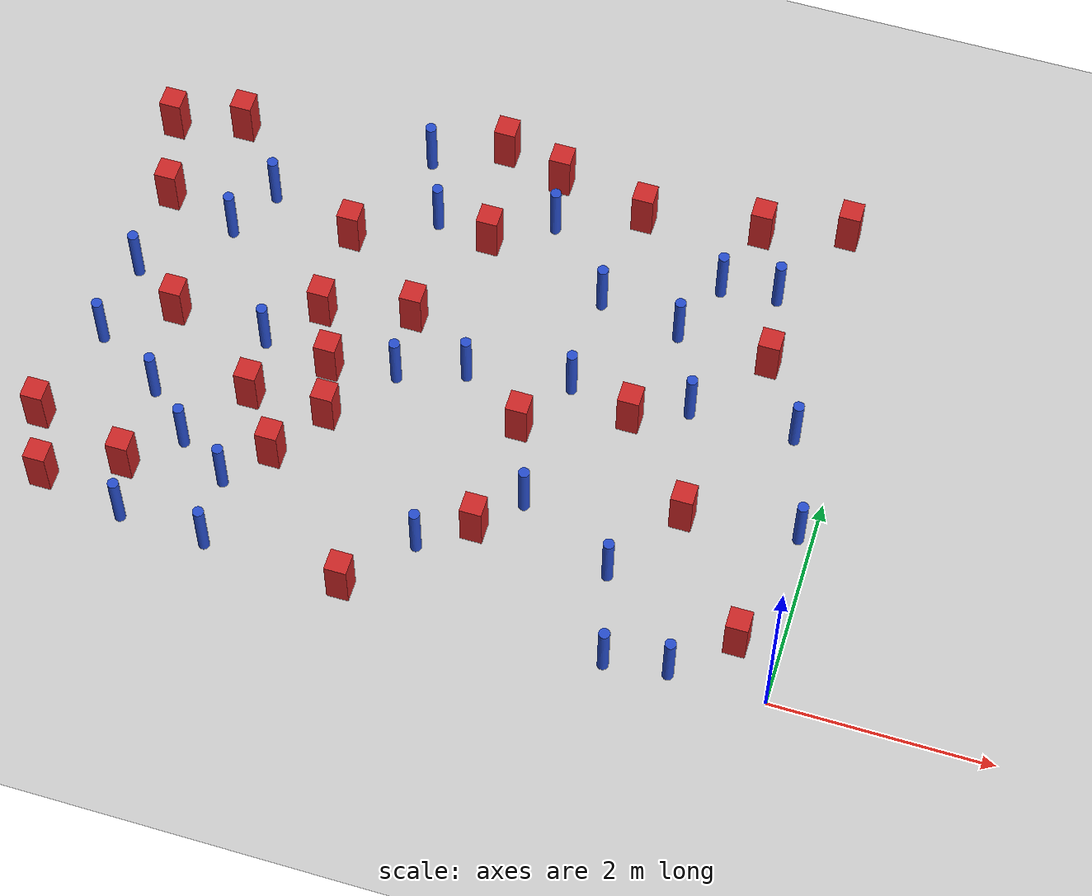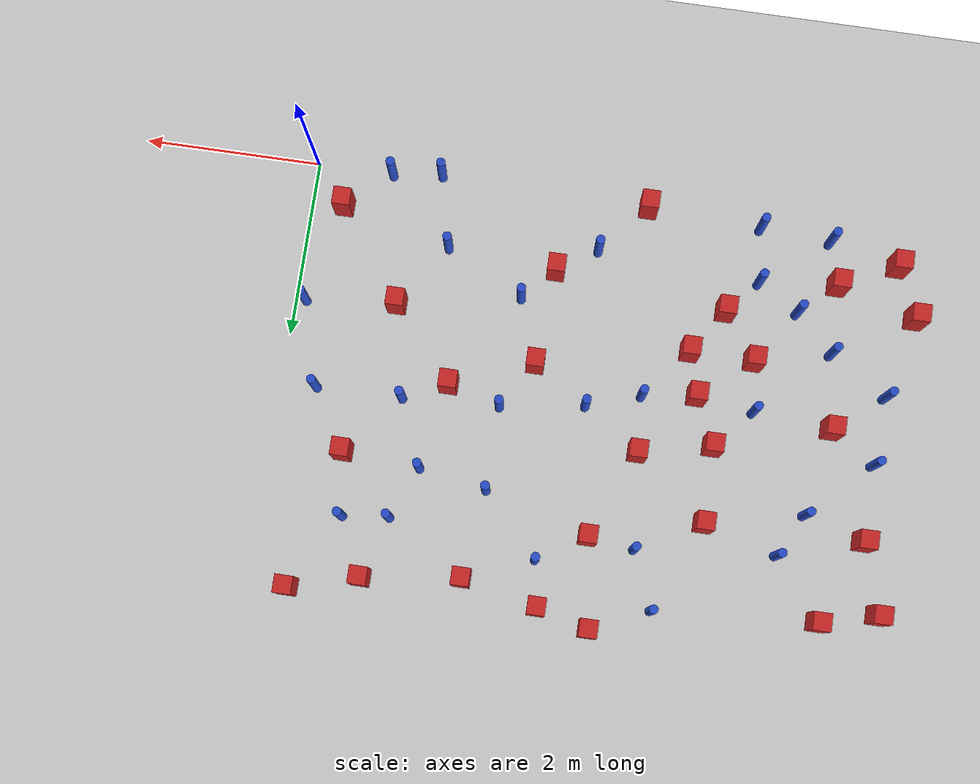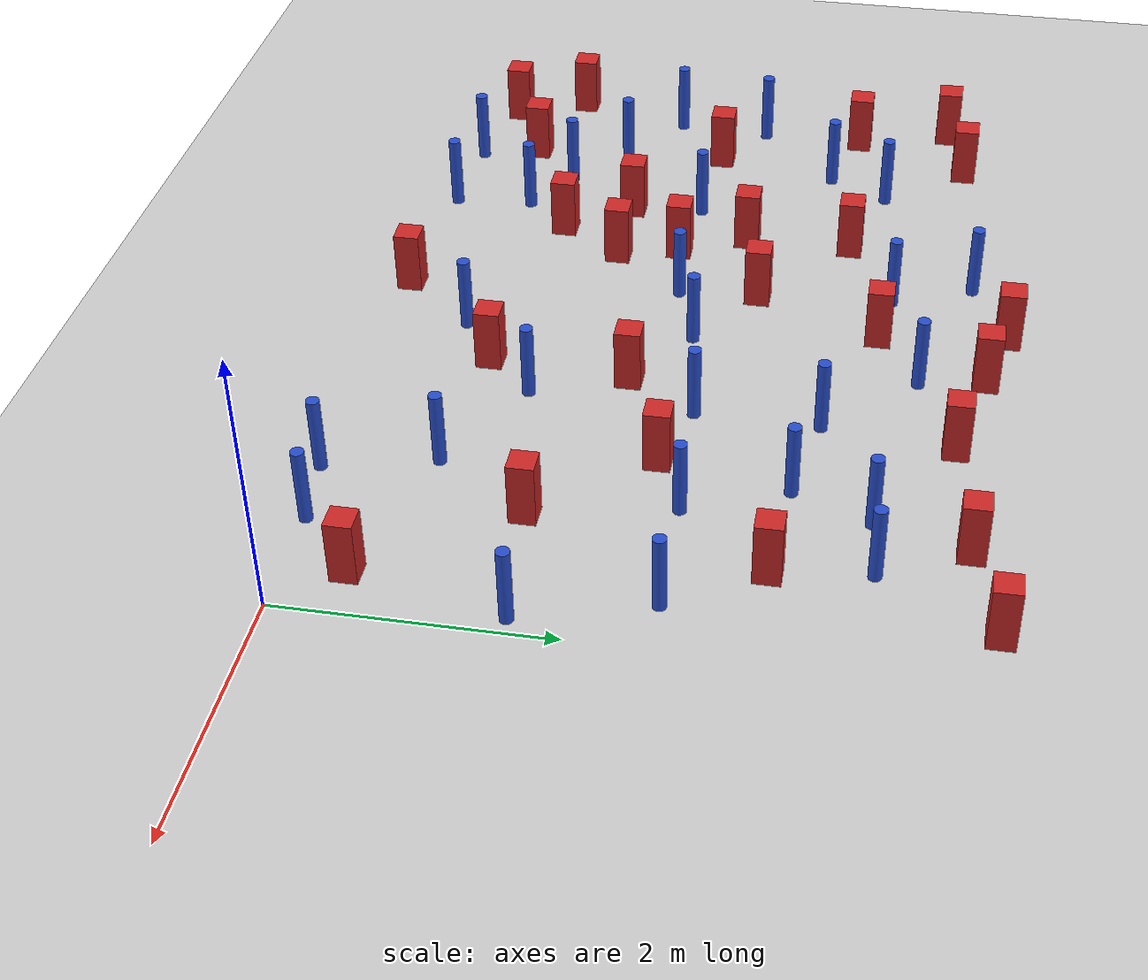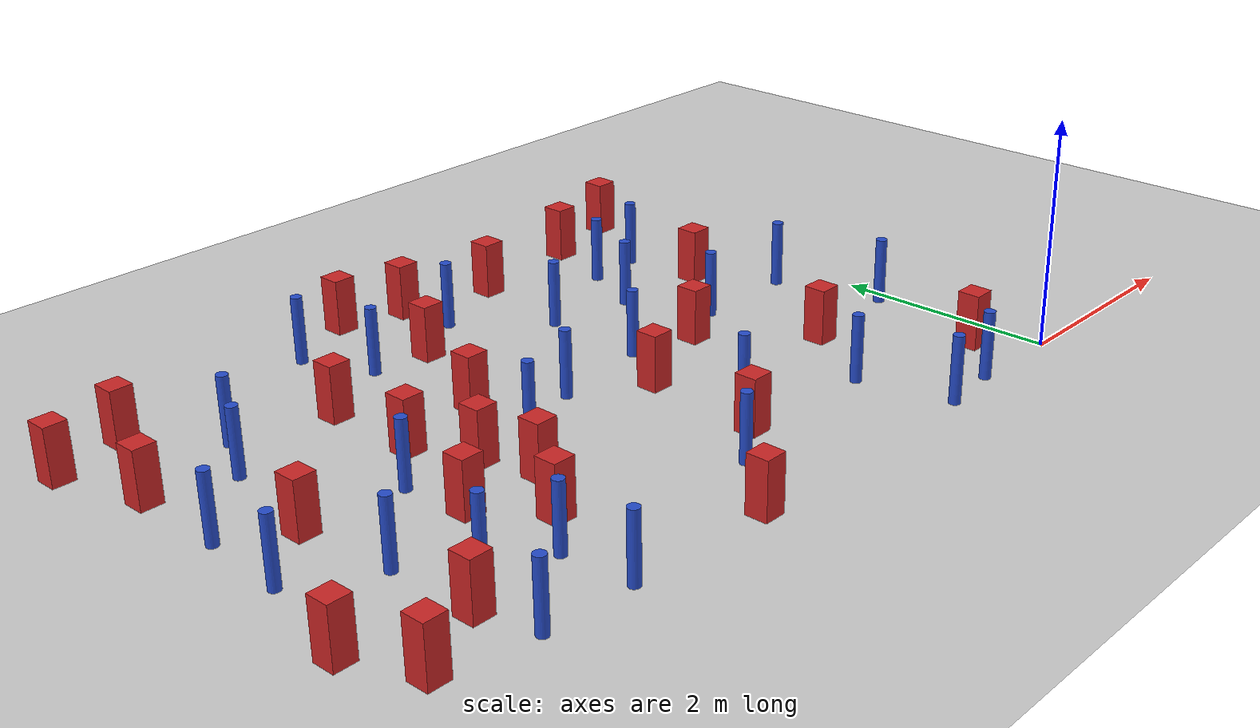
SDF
<sdf version="1.6">
 <world name="default">
  <model name="ground_plane">
   <static>1</static>
   <link name="link">
    <collision name="collision">
     <geometry><plane><normal>0 0 1</normal><size>100 100</size></plane></geometry>
     <surface><friction><ode><mu>100</mu><mu2>50</mu2></ode></friction></surface>
    </collision>
    <visual name="visual">
     <cast_shadows>0</cast_shadows>
     <geometry><plane><normal>0 0 1</normal><size>100 100</size></plane></geometry>
     <material>
      <ambient>1.0 1.0 1.0 1.0</ambient>
      <diffuse>0.8 0.8 0.8 1.0</diffuse>
      <specular>0.01 0.01 0.01 1.000000</specular>
     </material>
    </visual>
   </link>
  </model>
  <model name="pole_obstacle8">
   <static>true</static>
   <pose>-2.45714861951 2.50290941545 7.38925637345e-09 -8.47170692798e-08 1.24976764939e-08 -1.74513093025e-07</pose>
   <link name="link">
    <pose>0 0 0.3 0 -0 0</pose>
    <inertial>
     <mass>1</mass>
     <inertia><ixx>0.145833</ixx><ixy>0</ixy><ixz>0</ixz><iyy>0.145833</iyy><iyz>0</iyz><izz>0.125</izz></inertia>
    </inertial>
    <collision name="collision">
     <geometry><cylinder><radius>0.05</radius><length>.6</length></cylinder></geometry>
    </collision>
    <visual name="visual">
     <geometry><cylinder><radius>0.05</radius><length>.6</length></cylinder></geometry>
     <material>
      <script><name>Gazebo/Blue</name><uri>file://media/materials/scripts/gazebo.material</uri></script>
     </material>
    </visual>
   </link>
  </model>
  <model name="square_post_obstacle14">
   <static>true</static>
   <pose>-3.61993753713 3.78609269903 1.91545236811e-07 -7.35059704564e-06 1.12565212e-07 2.39332434364e-05</pose>
   <link name="link">
    <pose>0 0 0.25 0 -0 0</pose>
    <inertial>
     <mass>100</mass>
     <inertia>
      <ixx>0.166667</ixx>
      <ixy>0</ixy>
      <ixz>0</ixz>
      <iyy>0.166667</iyy>
      <iyz>0</iyz>
      <izz>0.166667</izz>
     </inertia>
    </inertial>
    <collision name="collision"><geometry><box><size>.2 .2 .5</size></box></geometry></collision>
    <visual name="visual">
     <geometry><box><size>.2 .2 .5</size></box></geometry>
     <material>
      <script><name>Gazebo/Red</name><uri>file://media/materials/scripts/gazebo.material</uri></script>
     </material>
    </visual>
   </link>
  </model>
  <model name="square_post_obstacle16">
   <static>true</static>
   <pose>-3.17282569235 4.62792643698 1.91545236811e-07 -7.35059704564e-06 1.12565212e-07 2.39332434364e-05</pose>
   <link name="link">
    <pose>0 0 0.25 0 -0 0</pose>
    <inertial>
     <mass>100</mass>
     <inertia>
      <ixx>0.166667</ixx>
      <ixy>0</ixy>
      <ixz>0</ixz>
      <iyy>0.166667</iyy>
      <iyz>0</iyz>
      <izz>0.166667</izz>
     </inertia>
    </inertial>
    <collision name="collision"><geometry><box><size>.2 .2 .5</size></box></geometry></collision>
    <visual name="visual">
     <geometry><box><size>.2 .2 .5</size></box></geometry>
     <material>
      <script><name>Gazebo/Red</name><uri>file://media/materials/scripts/gazebo.material</uri></script>
     </material>
    </visual>
   </link>
  </model>
  <model name="square_post_obstacle20">
   <static>true</static>
   <pose>-3.75318855947 4.78498379285 1.91545236811e-07 -7.35059704564e-06 1.12565212e-07 2.39332434364e-05</pose>
   <link name="link">
    <pose>0 0 0.25 0 -0 0</pose>
    <inertial>
     <mass>100</mass>
     <inertia>
      <ixx>0.166667</ixx>
      <ixy>0</ixy>
      <ixz>0</ixz>
      <iyy>0.166667</iyy>
      <iyz>0</iyz>
      <izz>0.166667</izz>
     </inertia>
    </inertial>
    <collision name="collision"><geometry><box><size>.2 .2 .5</size></box></geometry></collision>
    <visual name="visual">
     <geometry><box><size>.2 .2 .5</size></box></geometry>
     <material>
      <script><name>Gazebo/Red</name><uri>file://media/materials/scripts/gazebo.material</uri></script>
     </material>
    </visual>
   </link>
  </model>
  <model name="square_post_obstacle21">
   <static>true</static>
   <pose>-4.84763002717 2.60883416688 1.91545236811e-07 -7.35059704564e-06 1.12565212e-07 2.39332434364e-05</pose>
   <link name="link">
    <pose>0 0 0.25 0 -0 0</pose>
    <inertial>
     <mass>100</mass>
     <inertia>
      <ixx>0.166667</ixx>
      <ixy>0</ixy>
      <ixz>0</ixz>
      <iyy>0.166667</iyy>
      <iyz>0</iyz>
      <izz>0.166667</izz>
     </inertia>
    </inertial>
    <collision name="collision"><geometry><box><size>.2 .2 .5</size></box></geometry></collision>
    <visual name="visual">
     <geometry><box><size>.2 .2 .5</size></box></geometry>
     <material>
      <script><name>Gazebo/Red</name><uri>file://media/materials/scripts/gazebo.material</uri></script>
     </material>
    </visual>
   </link>
  </model>
  <model name="pole_obstacle14">
   <static>true</static>
   <pose>-5.8877759669 0.108405964786 7.38925637345e-09 -8.47170692799e-08 1.24976765066e-08 -1.74513093016e-07</pose>
   <link name="link">
    <pose>0 0 0.3 0 -0 0</pose>
    <inertial>
     <mass>1</mass>
     <inertia><ixx>0.145833</ixx><ixy>0</ixy><ixz>0</ixz><iyy>0.145833</iyy><iyz>0</iyz><izz>0.125</izz></inertia>
    </inertial>
    <collision name="collision">
     <geometry><cylinder><radius>0.05</radius><length>.6</length></cylinder></geometry>
    </collision>
    <visual name="visual">
     <geometry><cylinder><radius>0.05</radius><length>.6</length></cylinder></geometry>
     <material>
      <script><name>Gazebo/Blue</name><uri>file://media/materials/scripts/gazebo.material</uri></script>
     </material>
    </visual>
   </link>
  </model>
  <model name="pole_obstacle18">
   <static>true</static>
   <pose>-5.14110402792 0.693001228473 7.38925637345e-09 -8.47170692799e-08 1.24976765038e-08 -1.74513093018e-07</pose>
   <link name="link">
    <pose>0 0 0.3 0 -0 0</pose>
    <inertial>
     <mass>1</mass>
     <inertia><ixx>0.145833</ixx><ixy>0</ixy><ixz>0</ixz><iyy>0.145833</iyy><iyz>0</iyz><izz>0.125</izz></inertia>
    </inertial>
    <collision name="collision">
     <geometry><cylinder><radius>0.05</radius><length>.6</length></cylinder></geometry>
    </collision>
    <visual name="visual">
     <geometry><cylinder><radius>0.05</radius><length>.6</length></cylinder></geometry>
     <material>
      <script><name>Gazebo/Blue</name><uri>file://media/materials/scripts/gazebo.material</uri></script>
     </material>
    </visual>
   </link>
  </model>
  <model name="pole_obstacle25">
   <static>true</static>
   <pose>-5.93798656992 3.22334917495 7.38925637345e-09 -8.47170692798e-08 1.24976764937e-08 -1.74513093023e-07</pose>
   <link name="link">
    <pose>0 0 0.3 0 -0 0</pose>
    <inertial>
     <mass>1</mass>
     <inertia><ixx>0.145833</ixx><ixy>0</ixy><ixz>0</ixz><iyy>0.145833</iyy><iyz>0</iyz><izz>0.125</izz></inertia>
    </inertial>
    <collision name="collision">
     <geometry><cylinder><radius>0.05</radius><length>.6</length></cylinder></geometry>
    </collision>
    <visual name="visual">
     <geometry><cylinder><radius>0.05</radius><length>.6</length></cylinder></geometry>
     <material>
      <script><name>Gazebo/Blue</name><uri>file://media/materials/scripts/gazebo.material</uri></script>
     </material>
    </visual>
   </link>
  </model>
  <model name="square_post_obstacle37">
   <static>true</static>
   <pose>-3.80329476543 -0.0026753076988 1.91545236811e-07 -7.35059704564e-06 1.12565212e-07 2.39332434364e-05</pose>
   <link name="link">
    <pose>0 0 0.25 0 -0 0</pose>
    <inertial>
     <mass>100</mass>
     <inertia>
      <ixx>0.166667</ixx>
      <ixy>0</ixy>
      <ixz>0</ixz>
      <iyy>0.166667</iyy>
      <iyz>0</iyz>
      <izz>0.166667</izz>
     </inertia>
    </inertial>
    <collision name="collision"><geometry><box><size>.2 .2 .5</size></box></geometry></collision>
    <visual name="visual">
     <geometry><box><size>.2 .2 .5</size></box></geometry>
     <material>
      <script><name>Gazebo/Red</name><uri>file://media/materials/scripts/gazebo.material</uri></script>
     </material>
    </visual>
   </link>
  </model>
  <model name="pole_obstacle45">
   <static>true</static>
   <pose>-6.03194285911 1.39634506865 7.38925637345e-09 -8.471706928e-08 1.24976765134e-08 -1.74513093015e-07</pose>
   <link name="link">
    <pose>0 0 0.3 0 -0 0</pose>
    <inertial>
     <mass>1</mass>
     <inertia><ixx>0.145833</ixx><ixy>0</ixy><ixz>0</ixz><iyy>0.145833</iyy><iyz>0</iyz><izz>0.125</izz></inertia>
    </inertial>
    <collision name="collision">
     <geometry><cylinder><radius>0.05</radius><length>.6</length></cylinder></geometry>
    </collision>
    <visual name="visual">
     <geometry><cylinder><radius>0.05</radius><length>.6</length></cylinder></geometry>
     <material>
      <script><name>Gazebo/Blue</name><uri>file://media/materials/scripts/gazebo.material</uri></script>
     </material>
    </visual>
   </link>
  </model>
  <model name="pole_obstacle48">
   <static>true</static>
   <pose>-3.39957138223 2.36013107849 7.38925637345e-09 -8.47170692798e-08 1.24976764939e-08 -1.74513093025e-07</pose>
   <link name="link">
    <pose>0 0 0.3 0 -0 0</pose>
    <inertial>
     <mass>1</mass>
     <inertia><ixx>0.145833</ixx><ixy>0</ixy><ixz>0</ixz><iyy>0.145833</iyy><iyz>0</iyz><izz>0.125</izz></inertia>
    </inertial>
    <collision name="collision">
     <geometry><cylinder><radius>0.05</radius><length>.6</length></cylinder></geometry>
    </collision>
    <visual name="visual">
     <geometry><cylinder><radius>0.05</radius><length>.6</length></cylinder></geometry>
     <material>
      <script><name>Gazebo/Blue</name><uri>file://media/materials/scripts/gazebo.material</uri></script>
     </material>
    </visual>
   </link>
  </model>
  <model name="square_post_obstacle52">
   <static>true</static>
   <pose>-4.46732612119 1.58200220174 1.91545236811e-07 -7.35059704564e-06 1.12565212e-07 2.39332434364e-05</pose>
   <link name="link">
    <pose>0 0 0.25 0 -0 0</pose>
    <inertial>
     <mass>100</mass>
     <inertia>
      <ixx>0.166667</ixx>
      <ixy>0</ixy>
      <ixz>0</ixz>
      <iyy>0.166667</iyy>
      <iyz>0</iyz>
      <izz>0.166667</izz>
     </inertia>
    </inertial>
    <collision name="collision"><geometry><box><size>.2 .2 .5</size></box></geometry></collision>
    <visual name="visual">
     <geometry><box><size>.2 .2 .5</size></box></geometry>
     <material>
      <script><name>Gazebo/Red</name><uri>file://media/materials/scripts/gazebo.material</uri></script>
     </material>
    </visual>
   </link>
  </model>
  <model name="pole_obstacle51">
   <static>true</static>
   <pose>-1.62716973444 0.780794262028 7.38925637345e-09 -8.47170692799e-08 1.24976765075e-08 -1.74513093017e-07</pose>
   <link name="link">
    <pose>0 0 0.3 0 -0 0</pose>
    <inertial>
     <mass>1</mass>
     <inertia><ixx>0.145833</ixx><ixy>0</ixy><ixz>0</ixz><iyy>0.145833</iyy><iyz>0</iyz><izz>0.125</izz></inertia>
    </inertial>
    <collision name="collision">
     <geometry><cylinder><radius>0.05</radius><length>.6</length></cylinder></geometry>
    </collision>
    <visual name="visual">
     <geometry><cylinder><radius>0.05</radius><length>.6</length></cylinder></geometry>
     <material>
      <script><name>Gazebo/Blue</name><uri>file://media/materials/scripts/gazebo.material</uri></script>
     </material>
    </visual>
   </link>
  </model>
  <model name="square_post_obstacle62">
   <static>true</static>
   <pose>-0.820516274999 3.24164997794 1.91545236811e-07 -7.35059704564e-06 1.12565212e-07 2.39332434364e-05</pose>
   <link name="link">
    <pose>0 0 0.25 0 -0 0</pose>
    <inertial>
     <mass>100</mass>
     <inertia>
      <ixx>0.166667</ixx>
      <ixy>0</ixy>
      <ixz>0</ixz>
      <iyy>0.166667</iyy>
      <iyz>0</iyz>
      <izz>0.166667</izz>
     </inertia>
    </inertial>
    <collision name="collision"><geometry><box><size>.2 .2 .5</size></box></geometry></collision>
    <visual name="visual">
     <geometry><box><size>.2 .2 .5</size></box></geometry>
     <material>
      <script><name>Gazebo/Red</name><uri>file://media/materials/scripts/gazebo.material</uri></script>
     </material>
    </visual>
   </link>
  </model>
  <model name="pole_obstacle64">
   <static>true</static>
   <pose>-4.13851744834 3.85927040419 7.38925637345e-09 -8.47170692798e-08 1.24976764937e-08 -1.74513093023e-07</pose>
   <link name="link">
    <pose>0 0 0.3 0 -0 0</pose>
    <inertial>
     <mass>1</mass>
     <inertia><ixx>0.145833</ixx><ixy>0</ixy><ixz>0</ixz><iyy>0.145833</iyy><iyz>0</iyz><izz>0.125</izz></inertia>
    </inertial>
    <collision name="collision">
     <geometry><cylinder><radius>0.05</radius><length>.6</length></cylinder></geometry>
    </collision>
    <visual name="visual">
     <geometry><cylinder><radius>0.05</radius><length>.6</length></cylinder></geometry>
     <material>
      <script><name>Gazebo/Blue</name><uri>file://media/materials/scripts/gazebo.material</uri></script>
     </material>
    </visual>
   </link>
  </model>
  <model name="pole_obstacle65">
   <static>true</static>
   <pose>-1.42865598445 -0.048239286929 7.38925637345e-09 -8.47170692799e-08 1.24976765049e-08 -1.74513093017e-07</pose>
   <link name="link">
    <pose>0 0 0.3 0 -0 0</pose>
    <inertial>
     <mass>1</mass>
     <inertia><ixx>0.145833</ixx><ixy>0</ixy><ixz>0</ixz><iyy>0.145833</iyy><iyz>0</iyz><izz>0.125</izz></inertia>
    </inertial>
    <collision name="collision">
     <geometry><cylinder><radius>0.05</radius><length>.6</length></cylinder></geometry>
    </collision>
    <visual name="visual">
     <geometry><cylinder><radius>0.05</radius><length>.6</length></cylinder></geometry>
     <material>
      <script><name>Gazebo/Blue</name><uri>file://media/materials/scripts/gazebo.material</uri></script>
     </material>
    </visual>
   </link>
  </model>
  <model name="pole_obstacle66">
   <static>true</static>
   <pose>-1.37184602622 2.56178259397 7.38925637345e-09 -8.47170692799e-08 1.24976765053e-08 -1.74513093017e-07</pose>
   <link name="link">
    <pose>0 0 0.3 0 -0 0</pose>
    <inertial>
     <mass>1</mass>
     <inertia><ixx>0.145833</ixx><ixy>0</ixy><ixz>0</ixz><iyy>0.145833</iyy><iyz>0</iyz><izz>0.125</izz></inertia>
    </inertial>
    <collision name="collision">
     <geometry><cylinder><radius>0.05</radius><length>.6</length></cylinder></geometry>
    </collision>
    <visual name="visual">
     <geometry><cylinder><radius>0.05</radius><length>.6</length></cylinder></geometry>
     <material>
      <script><name>Gazebo/Blue</name><uri>file://media/materials/scripts/gazebo.material</uri></script>
     </material>
    </visual>
   </link>
  </model>
  <model name="pole_obstacle68">
   <static>true</static>
   <pose>-4.00256958552 2.16192298082 7.38925637345e-09 -8.47170692798e-08 1.24976764953e-08 -1.74513093023e-07</pose>
   <link name="link">
    <pose>0 0 0.3 0 -0 0</pose>
    <inertial>
     <mass>1</mass>
     <inertia><ixx>0.145833</ixx><ixy>0</ixy><ixz>0</ixz><iyy>0.145833</iyy><iyz>0</iyz><izz>0.125</izz></inertia>
    </inertial>
    <collision name="collision">
     <geometry><cylinder><radius>0.05</radius><length>.6</length></cylinder></geometry>
    </collision>
    <visual name="visual">
     <geometry><cylinder><radius>0.05</radius><length>.6</length></cylinder></geometry>
     <material>
      <script><name>Gazebo/Blue</name><uri>file://media/materials/scripts/gazebo.material</uri></script>
     </material>
    </visual>
   </link>
  </model>
  <model name="square_post_obstacle73">
   <static>true</static>
   <pose>-6.12780269299 2.2348577028 1.91545236811e-07 -7.35059704564e-06 1.12565212e-07 2.39332434364e-05</pose>
   <link name="link">
    <pose>0 0 0.25 0 -0 0</pose>
    <inertial>
     <mass>100</mass>
     <inertia>
      <ixx>0.166667</ixx>
      <ixy>0</ixy>
      <ixz>0</ixz>
      <iyy>0.166667</iyy>
      <iyz>0</iyz>
      <izz>0.166667</izz>
     </inertia>
    </inertial>
    <collision name="collision"><geometry><box><size>.2 .2 .5</size></box></geometry></collision>
    <visual name="visual">
     <geometry><box><size>.2 .2 .5</size></box></geometry>
     <material>
      <script><name>Gazebo/Red</name><uri>file://media/materials/scripts/gazebo.material</uri></script>
     </material>
    </visual>
   </link>
  </model>
  <model name="square_post_obstacle75">
   <static>true</static>
   <pose>-2.32314541866 4.43561688847 1.91545236811e-07 -7.35059704564e-06 1.12565212e-07 2.39332434364e-05</pose>
   <link name="link">
    <pose>0 0 0.25 0 -0 0</pose>
    <inertial>
     <mass>100</mass>
     <inertia>
      <ixx>0.166667</ixx>
      <ixy>0</ixy>
      <ixz>0</ixz>
      <iyy>0.166667</iyy>
      <iyz>0</iyz>
      <izz>0.166667</izz>
     </inertia>
    </inertial>
    <collision name="collision"><geometry><box><size>.2 .2 .5</size></box></geometry></collision>
    <visual name="visual">
     <geometry><box><size>.2 .2 .5</size></box></geometry>
     <material>
      <script><name>Gazebo/Red</name><uri>file://media/materials/scripts/gazebo.material</uri></script>
     </material>
    </visual>
   </link>
  </model>
  <model name="pole_obstacle74">
   <static>true</static>
   <pose>-0.869775097153 0.0184634857611 7.38925637345e-09 -8.47170692799e-08 1.2497676505e-08 -1.74513093018e-07</pose>
   <link name="link">
    <pose>0 0 0.3 0 -0 0</pose>
    <inertial>
     <mass>1</mass>
     <inertia><ixx>0.145833</ixx><ixy>0</ixy><ixz>0</ixz><iyy>0.145833</iyy><iyz>0</iyz><izz>0.125</izz></inertia>
    </inertial>
    <collision name="collision">
     <geometry><cylinder><radius>0.05</radius><length>.6</length></cylinder></geometry>
    </collision>
    <visual name="visual">
     <geometry><cylinder><radius>0.05</radius><length>.6</length></cylinder></geometry>
     <material>
      <script><name>Gazebo/Blue</name><uri>file://media/materials/scripts/gazebo.material</uri></script>
     </material>
    </visual>
   </link>
  </model>
  <model name="pole_obstacle76">
   <static>true</static>
   <pose>-1.68362814734 3.30988020745 7.38925637345e-09 -8.47170692799e-08 1.24976765053e-08 -1.74513093017e-07</pose>
   <link name="link">
    <pose>0 0 0.3 0 -0 0</pose>
    <inertial>
     <mass>1</mass>
     <inertia><ixx>0.145833</ixx><ixy>0</ixy><ixz>0</ixz><iyy>0.145833</iyy><iyz>0</iyz><izz>0.125</izz></inertia>
    </inertial>
    <collision name="collision">
     <geometry><cylinder><radius>0.05</radius><length>.6</length></cylinder></geometry>
    </collision>
    <visual name="visual">
     <geometry><cylinder><radius>0.05</radius><length>.6</length></cylinder></geometry>
     <material>
      <script><name>Gazebo/Blue</name><uri>file://media/materials/scripts/gazebo.material</uri></script>
     </material>
    </visual>
   </link>
  </model>
  <model name="pole_obstacle79">
   <static>true</static>
   <pose>-6.67959800222 1.79836981382 7.38925637345e-09 -8.471706928e-08 1.24976765134e-08 -1.74513093015e-07</pose>
   <link name="link">
    <pose>0 0 0.3 0 -0 0</pose>
    <inertial>
     <mass>1</mass>
     <inertia><ixx>0.145833</ixx><ixy>0</ixy><ixz>0</ixz><iyy>0.145833</iyy><iyz>0</iyz><izz>0.125</izz></inertia>
    </inertial>
    <collision name="collision">
     <geometry><cylinder><radius>0.05</radius><length>.6</length></cylinder></geometry>
    </collision>
    <visual name="visual">
     <geometry><cylinder><radius>0.05</radius><length>.6</length></cylinder></geometry>
     <material>
      <script><name>Gazebo/Blue</name><uri>file://media/materials/scripts/gazebo.material</uri></script>
     </material>
    </visual>
   </link>
  </model>
  <model name="pole_obstacle82">
   <static>true</static>
   <pose>-5.24932135942 2.16752472941 7.38925637345e-09 -8.47170692798e-08 1.24976764937e-08 -1.74513093023e-07</pose>
   <link name="link">
    <pose>0 0 0.3 0 -0 0</pose>
    <inertial>
     <mass>1</mass>
     <inertia><ixx>0.145833</ixx><ixy>0</ixy><ixz>0</ixz><iyy>0.145833</iyy><iyz>0</iyz><izz>0.125</izz></inertia>
    </inertial>
    <collision name="collision">
     <geometry><cylinder><radius>0.05</radius><length>.6</length></cylinder></geometry>
    </collision>
    <visual name="visual">
     <geometry><cylinder><radius>0.05</radius><length>.6</length></cylinder></geometry>
     <material>
      <script><name>Gazebo/Blue</name><uri>file://media/materials/scripts/gazebo.material</uri></script>
     </material>
    </visual>
   </link>
  </model>
  <model name="pole_obstacle91">
   <static>true</static>
   <pose>-0.125707725286 1.60909884933 7.38925637345e-09 -8.47170692799e-08 1.24976765103e-08 -1.74513093015e-07</pose>
   <link name="link">
    <pose>0 0 0.3 0 -0 0</pose>
    <inertial>
     <mass>1</mass>
     <inertia><ixx>0.145833</ixx><ixy>0</ixy><ixz>0</ixz><iyy>0.145833</iyy><iyz>0</iyz><izz>0.125</izz></inertia>
    </inertial>
    <collision name="collision">
     <geometry><cylinder><radius>0.05</radius><length>.6</length></cylinder></geometry>
    </collision>
    <visual name="visual">
     <geometry><cylinder><radius>0.05</radius><length>.6</length></cylinder></geometry>
     <material>
      <script><name>Gazebo/Blue</name><uri>file://media/materials/scripts/gazebo.material</uri></script>
     </material>
    </visual>
   </link>
  </model>
  <model name="pole_obstacle99">
   <static>true</static>
   <pose>-2.44542330595 3.44680003858 7.38925637345e-09 -8.47170692798e-08 1.24976764939e-08 -1.74513093025e-07</pose>
   <link name="link">
    <pose>0 0 0.3 0 -0 0</pose>
    <inertial>
     <mass>1</mass>
     <inertia><ixx>0.145833</ixx><ixy>0</ixy><ixz>0</ixz><iyy>0.145833</iyy><iyz>0</iyz><izz>0.125</izz></inertia>
    </inertial>
    <collision name="collision">
     <geometry><cylinder><radius>0.05</radius><length>.6</length></cylinder></geometry>
    </collision>
    <visual name="visual">
     <geometry><cylinder><radius>0.05</radius><length>.6</length></cylinder></geometry>
     <material>
      <script><name>Gazebo/Blue</name><uri>file://media/materials/scripts/gazebo.material</uri></script>
     </material>
    </visual>
   </link>
  </model>
  <model name="square_post_obstacle90">
   <static>true</static>
   <pose>-6.92090414771 0.856919198273 1.91545236811e-07 -7.35059704564e-06 1.12565212e-07 2.39332434364e-05</pose>
   <link name="link">
    <pose>0 0 0.25 0 -0 0</pose>
    <inertial>
     <mass>100</mass>
     <inertia>
      <ixx>0.166667</ixx>
      <ixy>0</ixy>
      <ixz>0</ixz>
      <iyy>0.166667</iyy>
      <iyz>0</iyz>
      <izz>0.166667</izz>
     </inertia>
    </inertial>
    <collision name="collision"><geometry><box><size>.2 .2 .5</size></box></geometry></collision>
    <visual name="visual">
     <geometry><box><size>.2 .2 .5</size></box></geometry>
     <material>
      <script><name>Gazebo/Red</name><uri>file://media/materials/scripts/gazebo.material</uri></script>
     </material>
    </visual>
   </link>
  </model>
  <model name="pole_obstacle106">
   <static>true</static>
   <pose>-1.43830048011 3.8966463298 7.38925637345e-09 -8.47170692799e-08 1.24976765053e-08 -1.74513093017e-07</pose>
   <link name="link">
    <pose>0 0 0.3 0 -0 0</pose>
    <inertial>
     <mass>1</mass>
     <inertia><ixx>0.145833</ixx><ixy>0</ixy><ixz>0</ixz><iyy>0.145833</iyy><iyz>0</iyz><izz>0.125</izz></inertia>
    </inertial>
    <collision name="collision">
     <geometry><cylinder><radius>0.05</radius><length>.6</length></cylinder></geometry>
    </collision>
    <visual name="visual">
     <geometry><cylinder><radius>0.05</radius><length>.6</length></cylinder></geometry>
     <material>
      <script><name>Gazebo/Blue</name><uri>file://media/materials/scripts/gazebo.material</uri></script>
     </material>
    </visual>
   </link>
  </model>
  <model name="square_post_obstacle96">
   <static>true</static>
   <pose>-6.20253051088 4.35704826315 1.91545236811e-07 -7.35059704564e-06 1.12565212e-07 2.39332434364e-05</pose>
   <link name="link">
    <pose>0 0 0.25 0 -0 0</pose>
    <inertial>
     <mass>100</mass>
     <inertia>
      <ixx>0.166667</ixx>
      <ixy>0</ixy>
      <ixz>0</ixz>
      <iyy>0.166667</iyy>
      <iyz>0</iyz>
      <izz>0.166667</izz>
     </inertia>
    </inertial>
    <collision name="collision"><geometry><box><size>.2 .2 .5</size></box></geometry></collision>
    <visual name="visual">
     <geometry><box><size>.2 .2 .5</size></box></geometry>
     <material>
      <script><name>Gazebo/Red</name><uri>file://media/materials/scripts/gazebo.material</uri></script>
     </material>
    </visual>
   </link>
  </model>
  <model name="pole_obstacle112">
   <static>true</static>
   <pose>-0.40800825098 2.57315144025 7.38925637345e-09 -8.471706928e-08 1.24976765084e-08 -1.74513093017e-07</pose>
   <link name="link">
    <pose>0 0 0.3 0 -0 0</pose>
    <inertial>
     <mass>1</mass>
     <inertia><ixx>0.145833</ixx><ixy>0</ixy><ixz>0</ixz><iyy>0.145833</iyy><iyz>0</iyz><izz>0.125</izz></inertia>
    </inertial>
    <collision name="collision">
     <geometry><cylinder><radius>0.05</radius><length>.6</length></cylinder></geometry>
    </collision>
    <visual name="visual">
     <geometry><cylinder><radius>0.05</radius><length>.6</length></cylinder></geometry>
     <material>
      <script><name>Gazebo/Blue</name><uri>file://media/materials/scripts/gazebo.material</uri></script>
     </material>
    </visual>
   </link>
  </model>
  <model name="square_post_obstacle105">
   <static>true</static>
   <pose>-2.86625260092 0.869659569477 1.91545236811e-07 -7.35059704564e-06 1.12565212e-07 2.39332434364e-05</pose>
   <link name="link">
    <pose>0 0 0.25 0 -0 0</pose>
    <inertial>
     <mass>100</mass>
     <inertia>
      <ixx>0.166667</ixx>
      <ixy>0</ixy>
      <ixz>0</ixz>
      <iyy>0.166667</iyy>
      <iyz>0</iyz>
      <izz>0.166667</izz>
     </inertia>
    </inertial>
    <collision name="collision"><geometry><box><size>.2 .2 .5</size></box></geometry></collision>
    <visual name="visual">
     <geometry><box><size>.2 .2 .5</size></box></geometry>
     <material>
      <script><name>Gazebo/Red</name><uri>file://media/materials/scripts/gazebo.material</uri></script>
     </material>
    </visual>
   </link>
  </model>
  <model name="square_post_obstacle106">
   <static>true</static>
   <pose>-5.18707751079 1.58918417368 1.91545236811e-07 -7.35059704564e-06 1.12565212e-07 2.39332434364e-05</pose>
   <link name="link">
    <pose>0 0 0.25 0 -0 0</pose>
    <inertial>
     <mass>100</mass>
     <inertia>
      <ixx>0.166667</ixx>
      <ixy>0</ixy>
      <ixz>0</ixz>
      <iyy>0.166667</iyy>
      <iyz>0</iyz>
      <izz>0.166667</izz>
     </inertia>
    </inertial>
    <collision name="collision"><geometry><box><size>.2 .2 .5</size></box></geometry></collision>
    <visual name="visual">
     <geometry><box><size>.2 .2 .5</size></box></geometry>
     <material>
      <script><name>Gazebo/Red</name><uri>file://media/materials/scripts/gazebo.material</uri></script>
     </material>
    </visual>
   </link>
  </model>
  <model name="square_post_obstacle109">
   <static>true</static>
   <pose>-6.67068946078 0.281056716354 1.91545236811e-07 -7.35059704564e-06 1.12565212e-07 2.39332434364e-05</pose>
   <link name="link">
    <pose>0 0 0.25 0 -0 0</pose>
    <inertial>
     <mass>100</mass>
     <inertia>
      <ixx>0.166667</ixx>
      <ixy>0</ixy>
      <ixz>0</ixz>
      <iyy>0.166667</iyy>
      <iyz>0</iyz>
      <izz>0.166667</izz>
     </inertia>
    </inertial>
    <collision name="collision"><geometry><box><size>.2 .2 .5</size></box></geometry></collision>
    <visual name="visual">
     <geometry><box><size>.2 .2 .5</size></box></geometry>
     <material>
      <script><name>Gazebo/Red</name><uri>file://media/materials/scripts/gazebo.material</uri></script>
     </material>
    </visual>
   </link>
  </model>
  <model name="square_post_obstacle112">
   <static>true</static>
   <pose>-0.382738549372 0.460045610666 1.91545236811e-07 -7.35059704564e-06 1.12565212e-07 2.39332434364e-05</pose>
   <link name="link">
    <pose>0 0 0.25 0 -0 0</pose>
    <inertial>
     <mass>100</mass>
     <inertia>
      <ixx>0.166667</ixx>
      <ixy>0</ixy>
      <ixz>0</ixz>
      <iyy>0.166667</iyy>
      <iyz>0</iyz>
      <izz>0.166667</izz>
     </inertia>
    </inertial>
    <collision name="collision"><geometry><box><size>.2 .2 .5</size></box></geometry></collision>
    <visual name="visual">
     <geometry><box><size>.2 .2 .5</size></box></geometry>
     <material>
      <script><name>Gazebo/Red</name><uri>file://media/materials/scripts/gazebo.material</uri></script>
     </material>
    </visual>
   </link>
  </model>
  <model name="pole_obstacle127">
   <static>true</static>
   <pose>-4.40304086669 4.49292783292 7.38925637345e-09 -8.47170692796e-08 1.24976764786e-08 -1.74513093032e-07</pose>
   <link name="link">
    <pose>0 0 0.3 0 -0 0</pose>
    <inertial>
     <mass>1</mass>
     <inertia><ixx>0.145833</ixx><ixy>0</ixy><ixz>0</ixz><iyy>0.145833</iyy><iyz>0</iyz><izz>0.125</izz></inertia>
    </inertial>
    <collision name="collision">
     <geometry><cylinder><radius>0.05</radius><length>.6</length></cylinder></geometry>
    </collision>
    <visual name="visual">
     <geometry><cylinder><radius>0.05</radius><length>.6</length></cylinder></geometry>
     <material>
      <script><name>Gazebo/Blue</name><uri>file://media/materials/scripts/gazebo.material</uri></script>
     </material>
    </visual>
   </link>
  </model>
  <model name="square_post_obstacle113">
   <static>true</static>
   <pose>-4.60457235446 2.07095180331 1.91545236811e-07 -7.35059704564e-06 1.12565212e-07 2.39332434364e-05</pose>
   <link name="link">
    <pose>0 0 0.25 0 -0 0</pose>
    <inertial>
     <mass>100</mass>
     <inertia>
      <ixx>0.166667</ixx>
      <ixy>0</ixy>
      <ixz>0</ixz>
      <iyy>0.166667</iyy>
      <iyz>0</iyz>
      <izz>0.166667</izz>
     </inertia>
    </inertial>
    <collision name="collision"><geometry><box><size>.2 .2 .5</size></box></geometry></collision>
    <visual name="visual">
     <geometry><box><size>.2 .2 .5</size></box></geometry>
     <material>
      <script><name>Gazebo/Red</name><uri>file://media/materials/scripts/gazebo.material</uri></script>
     </material>
    </visual>
   </link>
  </model>
  <model name="square_post_obstacle118">
   <static>true</static>
   <pose>-6.8417433931 4.19257938527 1.91545236811e-07 -7.35059704564e-06 1.12565212e-07 2.39332434364e-05</pose>
   <link name="link">
    <pose>0 0 0.25 0 -0 0</pose>
    <inertial>
     <mass>100</mass>
     <inertia>
      <ixx>0.166667</ixx>
      <ixy>0</ixy>
      <ixz>0</ixz>
      <iyy>0.166667</iyy>
      <iyz>0</iyz>
      <izz>0.166667</izz>
     </inertia>
    </inertial>
    <collision name="collision"><geometry><box><size>.2 .2 .5</size></box></geometry></collision>
    <visual name="visual">
     <geometry><box><size>.2 .2 .5</size></box></geometry>
     <material>
      <script><name>Gazebo/Red</name><uri>file://media/materials/scripts/gazebo.material</uri></script>
     </material>
    </visual>
   </link>
  </model>
  <model name="square_post_obstacle130">
   <static>true</static>
   <pose>-1.23363548894 4.58130374537 1.91545236811e-07 -7.35059704564e-06 1.12565212e-07 2.39332434364e-05</pose>
   <link name="link">
    <pose>0 0 0.25 0 -0 0</pose>
    <inertial>
     <mass>100</mass>
     <inertia>
      <ixx>0.166667</ixx>
      <ixy>0</ixy>
      <ixz>0</ixz>
      <iyy>0.166667</iyy>
      <iyz>0</iyz>
      <izz>0.166667</izz>
     </inertia>
    </inertial>
    <collision name="collision"><geometry><box><size>.2 .2 .5</size></box></geometry></collision>
    <visual name="visual">
     <geometry><box><size>.2 .2 .5</size></box></geometry>
     <material>
      <script><name>Gazebo/Red</name><uri>file://media/materials/scripts/gazebo.material</uri></script>
     </material>
    </visual>
   </link>
  </model>
  <model name="square_post_obstacle147">
   <static>true</static>
   <pose>-2.78540905088 1.96209841394 1.91545236811e-07 -7.35059704564e-06 1.12565212e-07 2.39332434364e-05</pose>
   <link name="link">
    <pose>0 0 0.25 0 -0 0</pose>
    <inertial>
     <mass>100</mass>
     <inertia>
      <ixx>0.166667</ixx>
      <ixy>0</ixy>
      <ixz>0</ixz>
      <iyy>0.166667</iyy>
      <iyz>0</iyz>
      <izz>0.166667</izz>
     </inertia>
    </inertial>
    <collision name="collision"><geometry><box><size>.2 .2 .5</size></box></geometry></collision>
    <visual name="visual">
     <geometry><box><size>.2 .2 .5</size></box></geometry>
     <material>
      <script><name>Gazebo/Red</name><uri>file://media/materials/scripts/gazebo.material</uri></script>
     </material>
    </visual>
   </link>
  </model>
  <model name="square_post_obstacle149">
   <static>true</static>
   <pose>-1.86518796422 2.33086633554 1.91545236811e-07 -7.35059704564e-06 1.12565212e-07 2.39332434364e-05</pose>
   <link name="link">
    <pose>0 0 0.25 0 -0 0</pose>
    <inertial>
     <mass>100</mass>
     <inertia>
      <ixx>0.166667</ixx>
      <ixy>0</ixy>
      <ixz>0</ixz>
      <iyy>0.166667</iyy>
      <iyz>0</iyz>
      <izz>0.166667</izz>
     </inertia>
    </inertial>
    <collision name="collision"><geometry><box><size>.2 .2 .5</size></box></geometry></collision>
    <visual name="visual">
     <geometry><box><size>.2 .2 .5</size></box></geometry>
     <material>
      <script><name>Gazebo/Red</name><uri>file://media/materials/scripts/gazebo.material</uri></script>
     </material>
    </visual>
   </link>
  </model>
  <model name="square_post_obstacle151">
   <static>true</static>
   <pose>-4.03473298167 2.79202409411 1.91545236811e-07 -7.35059704564e-06 1.12565212e-07 2.39332434364e-05</pose>
   <link name="link">
    <pose>0 0 0.25 0 -0 0</pose>
    <inertial>
     <mass>100</mass>
     <inertia>
      <ixx>0.166667</ixx>
      <ixy>0</ixy>
      <ixz>0</ixz>
      <iyy>0.166667</iyy>
      <iyz>0</iyz>
      <izz>0.166667</izz>
     </inertia>
    </inertial>
    <collision name="collision"><geometry><box><size>.2 .2 .5</size></box></geometry></collision>
    <visual name="visual">
     <geometry><box><size>.2 .2 .5</size></box></geometry>
     <material>
      <script><name>Gazebo/Red</name><uri>file://media/materials/scripts/gazebo.material</uri></script>
     </material>
    </visual>
   </link>
  </model>
  <model name="pole_obstacle168">
   <static>true</static>
   <pose>-5.08924579961 0.0605442889942 7.38925637345e-09 -8.471706928e-08 1.24976765155e-08 -1.74513093014e-07</pose>
   <link name="link">
    <pose>0 0 0.3 0 -0 0</pose>
    <inertial>
     <mass>1</mass>
     <inertia><ixx>0.145833</ixx><ixy>0</ixy><ixz>0</ixz><iyy>0.145833</iyy><iyz>0</iyz><izz>0.125</izz></inertia>
    </inertial>
    <collision name="collision">
     <geometry><cylinder><radius>0.05</radius><length>.6</length></cylinder></geometry>
    </collision>
    <visual name="visual">
     <geometry><cylinder><radius>0.05</radius><length>.6</length></cylinder></geometry>
     <material>
      <script><name>Gazebo/Blue</name><uri>file://media/materials/scripts/gazebo.material</uri></script>
     </material>
    </visual>
   </link>
  </model>
  <model name="pole_obstacle173">
   <static>true</static>
   <pose>-5.68140509327 3.70511035395 7.38925637345e-09 -8.47170692798e-08 1.24976764937e-08 -1.74513093023e-07</pose>
   <link name="link">
    <pose>0 0 0.3 0 -0 0</pose>
    <inertial>
     <mass>1</mass>
     <inertia><ixx>0.145833</ixx><ixy>0</ixy><ixz>0</ixz><iyy>0.145833</iyy><iyz>0</iyz><izz>0.125</izz></inertia>
    </inertial>
    <collision name="collision">
     <geometry><cylinder><radius>0.05</radius><length>.6</length></cylinder></geometry>
    </collision>
    <visual name="visual">
     <geometry><cylinder><radius>0.05</radius><length>.6</length></cylinder></geometry>
     <material>
      <script><name>Gazebo/Blue</name><uri>file://media/materials/scripts/gazebo.material</uri></script>
     </material>
    </visual>
   </link>
  </model>
  <model name="pole_obstacle176">
   <static>true</static>
   <pose>-2.52117323496 1.23998750083 7.38925637345e-09 -8.471706928e-08 1.24976765152e-08 -1.74513093012e-07</pose>
   <link name="link">
    <pose>0 0 0.3 0 -0 0</pose>
    <inertial>
     <mass>1</mass>
     <inertia><ixx>0.145833</ixx><ixy>0</ixy><ixz>0</ixz><iyy>0.145833</iyy><iyz>0</iyz><izz>0.125</izz></inertia>
    </inertial>
    <collision name="collision">
     <geometry><cylinder><radius>0.05</radius><length>.6</length></cylinder></geometry>
    </collision>
    <visual name="visual">
     <geometry><cylinder><radius>0.05</radius><length>.6</length></cylinder></geometry>
     <material>
      <script><name>Gazebo/Blue</name><uri>file://media/materials/scripts/gazebo.material</uri></script>
     </material>
    </visual>
   </link>
  </model>
  <model name="square_post_obstacle168">
   <static>true</static>
   <pose>-1.15135663955 1.5078625848 1.91545236811e-07 -7.35059704564e-06 1.12565212e-07 2.39332434364e-05</pose>
   <link name="link">
    <pose>0 0 0.25 0 -0 0</pose>
    <inertial>
     <mass>100</mass>
     <inertia>
      <ixx>0.166667</ixx>
      <ixy>0</ixy>
      <ixz>0</ixz>
      <iyy>0.166667</iyy>
      <iyz>0</iyz>
      <izz>0.166667</izz>
     </inertia>
    </inertial>
    <collision name="collision"><geometry><box><size>.2 .2 .5</size></box></geometry></collision>
    <visual name="visual">
     <geometry><box><size>.2 .2 .5</size></box></geometry>
     <material>
      <script><name>Gazebo/Red</name><uri>file://media/materials/scripts/gazebo.material</uri></script>
     </material>
    </visual>
   </link>
  </model>
  <model name="square_post_obstacle176">
   <static>true</static>
   <pose>-4.85434177642 3.46633106155 1.91545236811e-07 -7.35059704564e-06 1.12565212e-07 2.39332434364e-05</pose>
   <link name="link">
    <pose>0 0 0.25 0 -0 0</pose>
    <inertial>
     <mass>100</mass>
     <inertia>
      <ixx>0.166667</ixx>
      <ixy>0</ixy>
      <ixz>0</ixz>
      <iyy>0.166667</iyy>
      <iyz>0</iyz>
      <izz>0.166667</izz>
     </inertia>
    </inertial>
    <collision name="collision"><geometry><box><size>.2 .2 .5</size></box></geometry></collision>
    <visual name="visual">
     <geometry><box><size>.2 .2 .5</size></box></geometry>
     <material>
      <script><name>Gazebo/Red</name><uri>file://media/materials/scripts/gazebo.material</uri></script>
     </material>
    </visual>
   </link>
  </model>
  <model name="square_post_obstacle200">
   <static>true</static>
   <pose>-4.80661372711 1.06828668883 1.91545236811e-07 -7.35059704564e-06 1.12565212e-07 2.39332434364e-05</pose>
   <link name="link">
    <pose>0 0 0.25 0 -0 0</pose>
    <inertial>
     <mass>100</mass>
     <inertia>
      <ixx>0.166667</ixx>
      <ixy>0</ixy>
      <ixz>0</ixz>
      <iyy>0.166667</iyy>
      <iyz>0</iyz>
      <izz>0.166667</izz>
     </inertia>
    </inertial>
    <collision name="collision"><geometry><box><size>.2 .2 .5</size></box></geometry></collision>
    <visual name="visual">
     <geometry><box><size>.2 .2 .5</size></box></geometry>
     <material>
      <script><name>Gazebo/Red</name><uri>file://media/materials/scripts/gazebo.material</uri></script>
     </material>
    </visual>
   </link>
  </model>
  <model name="pole_obstacle197">
   <static>true</static>
   <pose>-3.30674244874 0.574683173876 7.38925637345e-09 -8.471706928e-08 1.24976765177e-08 -1.74513093012e-07</pose>
   <link name="link">
    <pose>0 0 0.3 0 -0 0</pose>
    <inertial>
     <mass>1</mass>
     <inertia><ixx>0.145833</ixx><ixy>0</ixy><ixz>0</ixz><iyy>0.145833</iyy><iyz>0</iyz><izz>0.125</izz></inertia>
    </inertial>
    <collision name="collision">
     <geometry><cylinder><radius>0.05</radius><length>.6</length></cylinder></geometry>
    </collision>
    <visual name="visual">
     <geometry><cylinder><radius>0.05</radius><length>.6</length></cylinder></geometry>
     <material>
      <script><name>Gazebo/Blue</name><uri>file://media/materials/scripts/gazebo.material</uri></script>
     </material>
    </visual>
   </link>
  </model>
  <model name="pole_obstacle203">
   <static>true</static>
   <pose>-5.60704783393 0.9775957307 7.38925637345e-09 -8.471706928e-08 1.24976765166e-08 -1.74513093011e-07</pose>
   <link name="link">
    <pose>0 0 0.3 0 -0 0</pose>
    <inertial>
     <mass>1</mass>
     <inertia><ixx>0.145833</ixx><ixy>0</ixy><ixz>0</ixz><iyy>0.145833</iyy><iyz>0</iyz><izz>0.125</izz></inertia>
    </inertial>
    <collision name="collision">
     <geometry><cylinder><radius>0.05</radius><length>.6</length></cylinder></geometry>
    </collision>
    <visual name="visual">
     <geometry><cylinder><radius>0.05</radius><length>.6</length></cylinder></geometry>
     <material>
      <script><name>Gazebo/Blue</name><uri>file://media/materials/scripts/gazebo.material</uri></script>
     </material>
    </visual>
   </link>
  </model>
  <model name="square_post_obstacle212">
   <static>true</static>
   <pose>-6.02139295297 0.593659892682 1.91545236811e-07 -7.35059704564e-06 1.12565212e-07 2.39332434364e-05</pose>
   <link name="link">
    <pose>0 0 0.25 0 -0 0</pose>
    <inertial>
     <mass>100</mass>
     <inertia>
      <ixx>0.166667</ixx>
      <ixy>0</ixy>
      <ixz>0</ixz>
      <iyy>0.166667</iyy>
      <iyz>0</iyz>
      <izz>0.166667</izz>
     </inertia>
    </inertial>
    <collision name="collision"><geometry><box><size>.2 .2 .5</size></box></geometry></collision>
    <visual name="visual">
     <geometry><box><size>.2 .2 .5</size></box></geometry>
     <material>
      <script><name>Gazebo/Red</name><uri>file://media/materials/scripts/gazebo.material</uri></script>
     </material>
    </visual>
   </link>
  </model>
  <model name="square_post_obstacle216">
   <static>true</static>
   <pose>-0.460763242533 4.79179036019 1.91545236811e-07 -7.35059704564e-06 1.12565212e-07 2.39332434364e-05</pose>
   <link name="link">
    <pose>0 0 0.25 0 -0 0</pose>
    <inertial>
     <mass>100</mass>
     <inertia>
      <ixx>0.166667</ixx>
      <ixy>0</ixy>
      <ixz>0</ixz>
      <iyy>0.166667</iyy>
      <iyz>0</iyz>
      <izz>0.166667</izz>
     </inertia>
    </inertial>
    <collision name="collision"><geometry><box><size>.2 .2 .5</size></box></geometry></collision>
    <visual name="visual">
     <geometry><box><size>.2 .2 .5</size></box></geometry>
     <material>
      <script><name>Gazebo/Red</name><uri>file://media/materials/scripts/gazebo.material</uri></script>
     </material>
    </visual>
   </link>
  </model>
  <model name="square_post_obstacle217">
   <static>true</static>
   <pose>-6.60824182046 3.41734913839 1.91545236811e-07 -7.35059704564e-06 1.12565212e-07 2.39332434364e-05</pose>
   <link name="link">
    <pose>0 0 0.25 0 -0 0</pose>
    <inertial>
     <mass>100</mass>
     <inertia>
      <ixx>0.166667</ixx>
      <ixy>0</ixy>
      <ixz>0</ixz>
      <iyy>0.166667</iyy>
      <iyz>0</iyz>
      <izz>0.166667</izz>
     </inertia>
    </inertial>
    <collision name="collision"><geometry><box><size>.2 .2 .5</size></box></geometry></collision>
    <visual name="visual">
     <geometry><box><size>.2 .2 .5</size></box></geometry>
     <material>
      <script><name>Gazebo/Red</name><uri>file://media/materials/scripts/gazebo.material</uri></script>
     </material>
    </visual>
   </link>
  </model>
  <model name="pole_obstacle213">
   <static>true</static>
   <pose>-6.62489955703 2.57074041771 7.38925637345e-09 -8.47170692798e-08 1.24976764937e-08 -1.74513093023e-07</pose>
   <link name="link">
    <pose>0 0 0.3 0 -0 0</pose>
    <inertial>
     <mass>1</mass>
     <inertia><ixx>0.145833</ixx><ixy>0</ixy><ixz>0</ixz><iyy>0.145833</iyy><iyz>0</iyz><izz>0.125</izz></inertia>
    </inertial>
    <collision name="collision">
     <geometry><cylinder><radius>0.05</radius><length>.6</length></cylinder></geometry>
    </collision>
    <visual name="visual">
     <geometry><cylinder><radius>0.05</radius><length>.6</length></cylinder></geometry>
     <material>
      <script><name>Gazebo/Blue</name><uri>file://media/materials/scripts/gazebo.material</uri></script>
     </material>
    </visual>
   </link>
  </model>
  <model name="pole_obstacle214">
   <static>true</static>
   <pose>-0.919353990425 3.95115002078 7.38925637345e-09 -8.47170692799e-08 1.24976765083e-08 -1.74513093016e-07</pose>
   <link name="link">
    <pose>0 0 0.3 0 -0 0</pose>
    <inertial>
     <mass>1</mass>
     <inertia><ixx>0.145833</ixx><ixy>0</ixy><ixz>0</ixz><iyy>0.145833</iyy><iyz>0</iyz><izz>0.125</izz></inertia>
    </inertial>
    <collision name="collision">
     <geometry><cylinder><radius>0.05</radius><length>.6</length></cylinder></geometry>
    </collision>
    <visual name="visual">
     <geometry><cylinder><radius>0.05</radius><length>.6</length></cylinder></geometry>
     <material>
      <script><name>Gazebo/Blue</name><uri>file://media/materials/scripts/gazebo.material</uri></script>
     </material>
    </visual>
   </link>
  </model>
  <model name="pole_obstacle219">
   <static>true</static>
   <pose>-3.08735999043 4.12452002078 7.38925637345e-09 -8.47170692794e-08 1.24976764468e-08 -1.7451309304e-07</pose>
   <link name="link">
    <pose>0 0 0.3 0 -0 0</pose>
    <inertial>
     <mass>1</mass>
     <inertia><ixx>0.145833</ixx><ixy>0</ixy><ixz>0</ixz><iyy>0.145833</iyy><iyz>0</iyz><izz>0.125</izz></inertia>
    </inertial>
    <collision name="collision">
     <geometry><cylinder><radius>0.05</radius><length>.6</length></cylinder></geometry>
    </collision>
    <visual name="visual">
     <geometry><cylinder><radius>0.05</radius><length>.6</length></cylinder></geometry>
     <material>
      <script><name>Gazebo/Blue</name><uri>file://media/materials/scripts/gazebo.material</uri></script>
     </material>
    </visual>
   </link>
  </model>
 </world>
</sdf>
